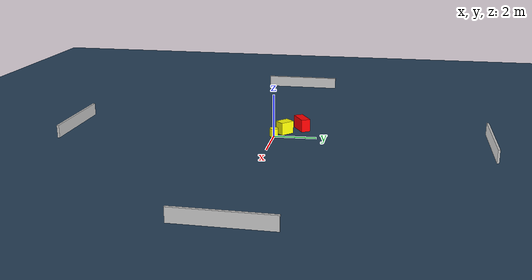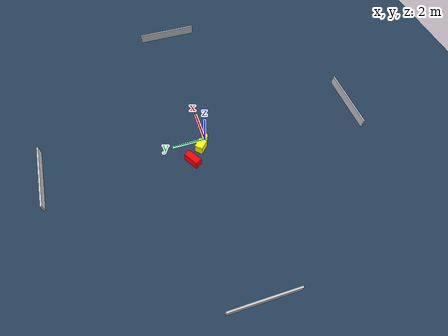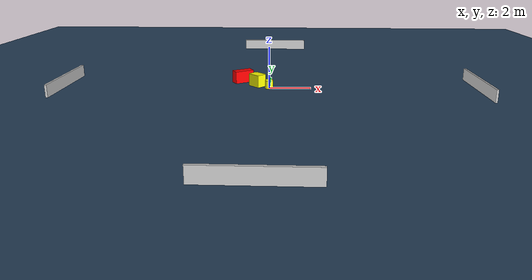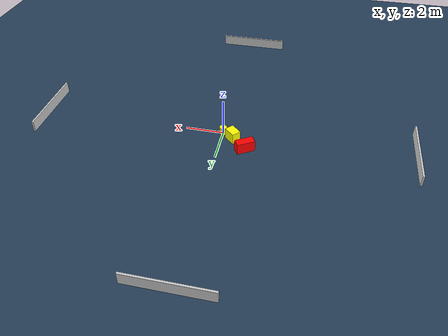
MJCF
<?xml version="1.0" ?>
<mujoco model="generated_environment">
  <option timestep="0.01" integrator="RK4" cone="elliptic"/>
  <default>
    <geom density="1"/>
  </default>
  <asset>
    <texture builtin="gradient" height="3072" name="skybox" rgb1="0.3 0.5 0.7" rgb2="0 0 0" type="skybox" width="512"/>
    <texture builtin="checker" height="300" name="groundplane" rgb1="0.2 0.3 0.4" rgb2="0.1 0.2 0.3" type="2d" width="300"/>
    <material name="groundplane" reflectance="0.2" texrepeat="5 5" texture="groundplane"/>
  </asset>
  <worldbody>
    <light dir="0 0 -1" directional="true" pos="0 0 1.5"/>
    <geom condim="3" friction="0.5 0.005 0.001" material="groundplane" name="floor" pos="0 0 0" size="0 0 0.05" type="plane"/>
    <body name="walls">
      <geom name="wall_1" condim="4" pos="-10.0 0.0 0.3" rgba="0.800000011920929 0.800000011920929 0.800000011920929 1.0" size="0.05 2.0 0.3" type="box"/>
      <geom name="wall_2" condim="4" pos="10.0 0.0 0.3" rgba="0.800000011920929 0.800000011920929 0.800000011920929 1.0" size="0.05 2.0 0.3" type="box"/>
      <geom name="wall_3" condim="4" pos="0.0 -10.0 0.3" rgba="0.800000011920929 0.800000011920929 0.800000011920929 1.0" size="2.0 0.05 0.3" type="box"/>
      <geom name="wall_4" condim="4" pos="0.0 10.0 0.3" rgba="0.800000011920929 0.800000011920929 0.800000011920929 1.0" size="2.0 0.05 0.3" type="box"/>
    </body>
    <body name="robot">
      <joint name="joint_x" type="slide" pos="0 0 0" axis="1 0 0"/>
      <joint name="joint_y" type="slide" pos="0 0 0" axis="0 1 0"/>
      <geom name="robot" type="cylinder" pos="0.0 0.0 0.2" size="0.2 0.2 0.0" mass="5.0" friction="1.0 0.005 0.0001" condim="4" rgba="1.0 1.0 0.0 1.0"/>
    </body>
    <body name="obstacle_1_movable">
      <geom name="obstacle_1_movable" condim="4" pos="-0.5993168535904114 0.4171880011506727 0.3" euler="0 0 226.31666763267896" friction="0.0 0.005 0.001" rgba="1.0 1.0 0.0 1.0" size="0.24874465136424923 0.33582545415982357 0.3" type="box" mass="0.1"/>
      <joint type="free"/>
    </body>
    <body name="obstacle_2_static">
      <geom name="obstacle_2_static" condim="4" pos="-1.3714702626347566 1.1518842177987128 0.3" euler="0 0 211.05645999745735" friction="0.0 0.005 0.001" rgba="1.0 0.0 0.0 1.0" size="0.4840595852879697 0.21846935286017785 0.3" type="box"/>
    </body>
  </worldbody>
  <actuator>
    <motor name="actuator_x" joint="joint_x" gear="1" ctrlrange="-1 1"/>
    <motor name="actuator_y" joint="joint_y" gear="1" ctrlrange="-1 1"/>
  </actuator>
</mujoco>
